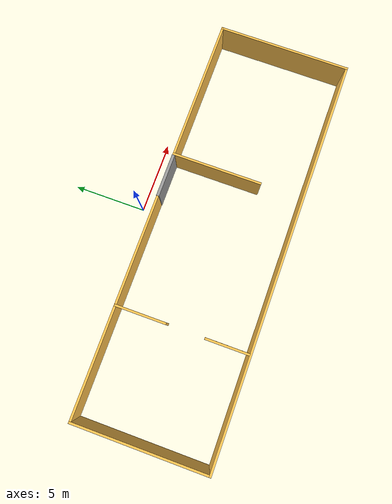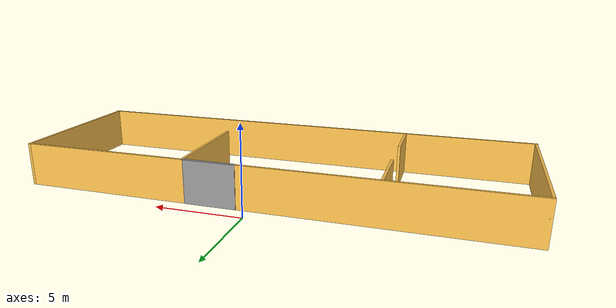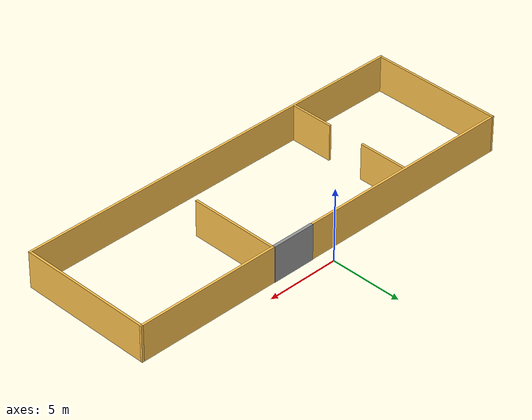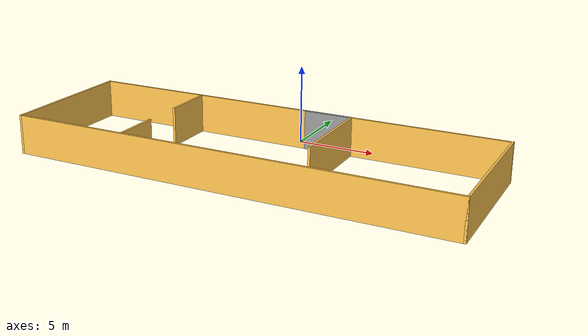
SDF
<?xml version='1.0'?>
<sdf version='1.6'>
  <model name='mybuilding'>
    <pose frame=''>-0.34 -5.57 0 0 -0 0</pose>
    <link name='Door_0'>
      <collision name='Door_0_Collision'>
        <geometry>
          <box>
            <size>3 0.2 2.5</size>
          </box>
        </geometry>
        <pose frame=''>0 0 1.25 0 -0 0</pose>
      </collision>
      <visual name='Door_0_Visual'>
        <pose frame=''>0 0 1.25 0 -0 0</pose>
        <geometry>
          <box>
            <size>3 0.2 2.5</size>
          </box>
        </geometry>
        <material>
          <script>
            <uri>file://media/materials/scripts/gazebo.material</uri>
            <name>Gazebo/Grey</name>
          </script>
        </material>
      </visual>
      <pose frame=''>2.62 4.55 0 0 -0 0</pose>
    </link>
    <link name='Wall_0'>
      <collision name='Wall_0_Collision'>
        <geometry>
          <box>
            <size>9.25 0.15 2.5</size>
          </box>
        </geometry>
        <pose frame=''>0 0 1.25 0 -0 0</pose>
      </collision>
      <visual name='Wall_0_Visual'>
        <pose frame=''>0 0 1.25 0 -0 0</pose>
        <geometry>
          <box>
            <size>9.25 0.15 2.5</size>
          </box>
        </geometry>
        <material>
          <script>
            <uri>file://media/materials/scripts/gazebo.material</uri>
            <name>Gazebo/Grey</name>
          </script>
          <ambient>1 0.764706 0.305882 1</ambient>
        </material>
        <meta>
          <layer>0</layer>
        </meta>
      </visual>
      <pose frame=''>-14.05 0 0 0 0 -1.5708</pose>
    </link>
    <link name='Wall_1'>
      <collision name='Wall_1_Collision'>
        <geometry>
          <box>
            <size>28.25 0.15 2.5</size>
          </box>
        </geometry>
        <pose frame=''>0 0 1.25 0 -0 0</pose>
      </collision>
      <visual name='Wall_1_Visual'>
        <pose frame=''>0 0 1.25 0 -0 0</pose>
        <geometry>
          <box>
            <size>28.25 0.15 2.5</size>
          </box>
        </geometry>
        <material>
          <script>
            <uri>file://media/materials/scripts/gazebo.material</uri>
            <name>Gazebo/Grey</name>
          </script>
          <ambient>1 0.764706 0.305882 1</ambient>
        </material>
        <meta>
          <layer>0</layer>
        </meta>
      </visual>
      <pose frame=''>0 -4.55 0 0 -0 0</pose>
    </link>
    <link name='Wall_10'>
      <collision name='Wall_10_Collision'>
        <geometry>
          <box>
            <size>3 0.15 2.5</size>
          </box>
        </geometry>
        <pose frame=''>0 0 1.25 0 -0 0</pose>
      </collision>
      <visual name='Wall_10_Visual'>
        <pose frame=''>0 0 1.25 0 -0 0</pose>
        <geometry>
          <box>
            <size>3 0.15 2.5</size>
          </box>
        </geometry>
        <material>
          <script>
            <uri>file://media/materials/scripts/gazebo.material</uri>
            <name>Gazebo/Grey</name>
          </script>
          <ambient>1 0.764706 0.305882 1</ambient>
        </material>
        <meta>
          <layer>0</layer>
        </meta>
      </visual>
      <pose frame=''>-6.53 -2.995 0 0 0 -1.5708</pose>
    </link>
    <link name='Wall_2'>
      <collision name='Wall_2_Collision'>
        <geometry>
          <box>
            <size>9.25 0.15 2.5</size>
          </box>
        </geometry>
        <pose frame=''>0 0 1.25 0 -0 0</pose>
      </collision>
      <visual name='Wall_2_Visual'>
        <pose frame=''>0 0 1.25 0 -0 0</pose>
        <geometry>
          <box>
            <size>9.25 0.15 2.5</size>
          </box>
        </geometry>
        <material>
          <script>
            <uri>file://media/materials/scripts/gazebo.material</uri>
            <name>Gazebo/Grey</name>
          </script>
          <ambient>1 0.764706 0.305882 1</ambient>
        </material>
        <meta>
          <layer>0</layer>
        </meta>
      </visual>
      <pose frame=''>14.05 0 0 0 -0 1.5708</pose>
    </link>
    <link name='Wall_3'>
      <collision name='Wall_3_Collision'>
        <geometry>
          <box>
            <size>10 0.15 2.5</size>
          </box>
        </geometry>
        <pose frame=''>0 0 1.25 0 -0 0</pose>
      </collision>
      <visual name='Wall_3_Visual'>
        <pose frame=''>0 0 1.25 0 -0 0</pose>
        <geometry>
          <box>
            <size>10 0.15 2.5</size>
          </box>
        </geometry>
        <material>
          <script>
            <uri>file://media/materials/scripts/gazebo.material</uri>
            <name>Gazebo/Grey</name>
          </script>
          <ambient>1 0.764706 0.305882 1</ambient>
        </material>
        <meta>
          <layer>0</layer>
        </meta>
      </visual>
      <pose frame=''>9.125 4.55 0 0 -0 3.14159</pose>
    </link>
    <link name='Wall_4'>
      <collision name='Wall_4_Collision'>
        <geometry>
          <box>
            <size>6.25 0.15 2.5</size>
          </box>
        </geometry>
        <pose frame=''>0 0 1.25 0 -0 0</pose>
      </collision>
      <visual name='Wall_4_Visual'>
        <pose frame=''>0 0 1.25 0 -0 0</pose>
        <geometry>
          <box>
            <size>6.25 0.15 2.5</size>
          </box>
        </geometry>
        <material>
          <script>
            <uri>file://media/materials/scripts/gazebo.material</uri>
            <name>Gazebo/Grey</name>
          </script>
          <ambient>1 0.764706 0.305882 1</ambient>
        </material>
        <meta>
          <layer>0</layer>
        </meta>
      </visual>
      <pose frame=''>4.2 1.5 0 0 0 -1.5708</pose>
    </link>
    <link name='Wall_6'>
      <collision name='Wall_6_Collision'>
        <geometry>
          <box>
            <size>15.25 0.15 2.5</size>
          </box>
        </geometry>
        <pose frame=''>0 0 1.25 0 -0 0</pose>
      </collision>
      <visual name='Wall_6_Visual'>
        <pose frame=''>0 0 1.25 0 -0 0</pose>
        <geometry>
          <box>
            <size>15.25 0.15 2.5</size>
          </box>
        </geometry>
        <material>
          <script>
            <uri>file://media/materials/scripts/gazebo.material</uri>
            <name>Gazebo/Grey</name>
          </script>
          <ambient>1 0.764706 0.305882 1</ambient>
        </material>
        <meta>
          <layer>0</layer>
        </meta>
      </visual>
      <pose frame=''>-6.5 4.55 0 0 -0 0</pose>
    </link>
    <link name='Wall_8'>
      <collision name='Wall_8_Collision'>
        <geometry>
          <box>
            <size>3.5 0.15 2.5</size>
          </box>
        </geometry>
        <pose frame=''>0 0 1.25 0 -0 0</pose>
      </collision>
      <visual name='Wall_8_Visual'>
        <pose frame=''>0 0 1.25 0 -0 0</pose>
        <geometry>
          <box>
            <size>3.5 0.15 2.5</size>
          </box>
        </geometry>
        <material>
          <script>
            <uri>file://media/materials/scripts/gazebo.material</uri>
            <name>Gazebo/Grey</name>
          </script>
          <ambient>1 0.764706 0.305882 1</ambient>
        </material>
        <meta>
          <layer>0</layer>
        </meta>
      </visual>
      <pose frame=''>-6.5 2.855 0 0 0 -1.5708</pose>
    </link>
    <static>1</static>
  </model>
</sdf>
